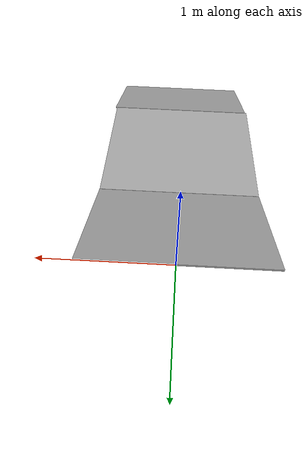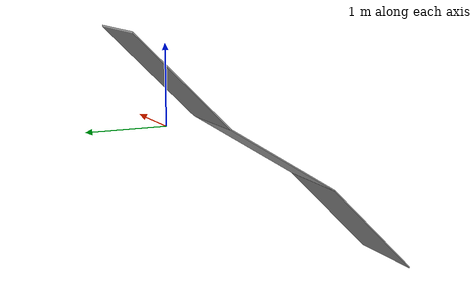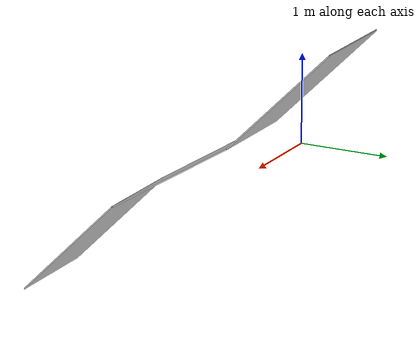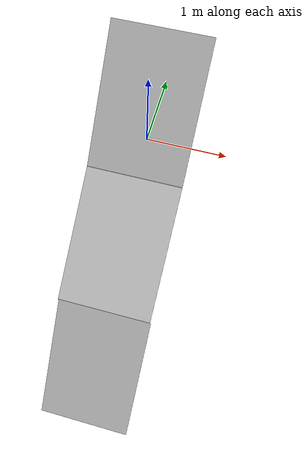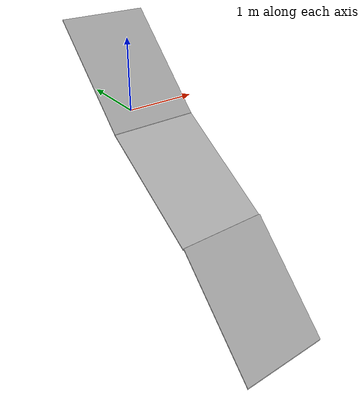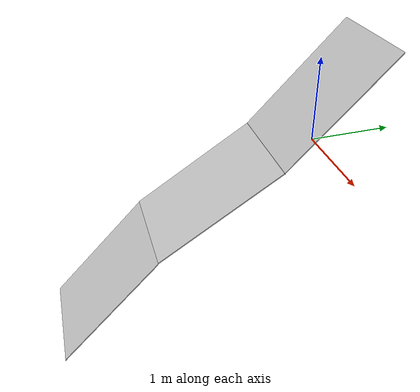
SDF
<?xml version='1.0'?>
<sdf version='1.7'>
  <model name='nist_simple_ramp_120_clone'>
    <link name='nist_simple_ramp_120_link'>
      <pose>0 0 0 0 -0 0</pose>
      <self_collide>0</self_collide>
      <enable_wind>0</enable_wind>
      <kinematic>0</kinematic>
      <visual name='visual'>
        <geometry>
          <mesh>
            <uri>model://nist_simple_ramp_120/meshes/nist_simple_ramp_120.dae</uri>
            <scale>1 1 1</scale>
          </mesh>
        </geometry>
        <material>
          <shader type='pixel'/>
        </material>
        <pose>0 0 0 0 -0 0</pose>
        <transparency>0</transparency>
        <cast_shadows>1</cast_shadows>
      </visual>
      <collision name='collision'>
        <laser_retro>0</laser_retro>
        <max_contacts>10</max_contacts>
        <pose>0 0 0 0 -0 0</pose>
        <geometry>
          <mesh>
            <uri>/home/cp/.gazebo/models/nist_simple_ramp_120/meshes/nist_simple_ramp_120.dae</uri>
            <scale>1 1 1</scale>
          </mesh>
        </geometry>
        <surface>
          <friction>
            <ode>
              <mu>1</mu>
              <mu2>1</mu2>
              <fdir1>0 0 0</fdir1>
              <slip1>0</slip1>
              <slip2>0</slip2>
            </ode>
            <torsional>
              <coefficient>1</coefficient>
              <patch_radius>0</patch_radius>
              <surface_radius>0</surface_radius>
              <use_patch_radius>1</use_patch_radius>
              <ode>
                <slip>0</slip>
              </ode>
            </torsional>
          </friction>
          <bounce>
            <restitution_coefficient>0</restitution_coefficient>
            <threshold>1e+06</threshold>
          </bounce>
          <contact>
            <collide_without_contact>0</collide_without_contact>
            <collide_without_contact_bitmask>1</collide_without_contact_bitmask>
            <collide_bitmask>1</collide_bitmask>
            <ode>
              <soft_cfm>0</soft_cfm>
              <soft_erp>0.2</soft_erp>
              <kp>1e+13</kp>
              <kd>1</kd>
              <max_vel>0.01</max_vel>
              <min_depth>0</min_depth>
            </ode>
            <bullet>
              <split_impulse>1</split_impulse>
              <split_impulse_penetration_threshold>-0.01</split_impulse_penetration_threshold>
              <soft_cfm>0</soft_cfm>
              <soft_erp>0.2</soft_erp>
              <kp>1e+13</kp>
              <kd>1</kd>
            </bullet>
          </contact>
        </surface>
      </collision>
    </link>
    <link name='nist_simple_ramp_120_link_clone'>
      <pose>-0.000385 -1.44094 -1.0206 -0.228258 0 0</pose>
      <self_collide>0</self_collide>
      <enable_wind>0</enable_wind>
      <kinematic>0</kinematic>
      <visual name='visual'>
        <geometry>
          <mesh>
            <uri>model://nist_simple_ramp_120/meshes/nist_simple_ramp_120.dae</uri>
            <scale>1 1 1</scale>
          </mesh>
        </geometry>
        <material>
          <shader type='pixel'/>
        </material>
        <pose>0 0 0 0 -0 0</pose>
        <transparency>0</transparency>
        <cast_shadows>1</cast_shadows>
      </visual>
      <collision name='collision'>
        <laser_retro>0</laser_retro>
        <max_contacts>10</max_contacts>
        <pose>0 0 0 0 -0 0</pose>
        <geometry>
          <mesh>
            <uri>/home/cp/.gazebo/models/nist_simple_ramp_120/meshes/nist_simple_ramp_120.dae</uri>
            <scale>1 1 1</scale>
          </mesh>
        </geometry>
        <surface>
          <friction>
            <ode>
              <mu>1</mu>
              <mu2>1</mu2>
              <fdir1>0 0 0</fdir1>
              <slip1>0</slip1>
              <slip2>0</slip2>
            </ode>
            <torsional>
              <coefficient>1</coefficient>
              <patch_radius>0</patch_radius>
              <surface_radius>0</surface_radius>
              <use_patch_radius>1</use_patch_radius>
              <ode>
                <slip>0</slip>
              </ode>
            </torsional>
          </friction>
          <bounce>
            <restitution_coefficient>0</restitution_coefficient>
            <threshold>1e+06</threshold>
          </bounce>
          <contact>
            <collide_without_contact>0</collide_without_contact>
            <collide_without_contact_bitmask>1</collide_without_contact_bitmask>
            <collide_bitmask>1</collide_bitmask>
            <ode>
              <soft_cfm>0</soft_cfm>
              <soft_erp>0.2</soft_erp>
              <kp>1e+13</kp>
              <kd>1</kd>
              <max_vel>0.01</max_vel>
              <min_depth>0</min_depth>
            </ode>
            <bullet>
              <split_impulse>1</split_impulse>
              <split_impulse_penetration_threshold>-0.01</split_impulse_penetration_threshold>
              <soft_cfm>0</soft_cfm>
              <soft_erp>0.2</soft_erp>
              <kp>1e+13</kp>
              <kd>1</kd>
            </bullet>
          </contact>
        </surface>
      </collision>
    </link>
    <link name='nist_simple_ramp_120_link_clone_0'>
      <pose>0.011456 -2.60372 -2.06883 0.001607 -0 0</pose>
      <self_collide>0</self_collide>
      <enable_wind>0</enable_wind>
      <kinematic>0</kinematic>
      <visual name='visual'>
        <geometry>
          <mesh>
            <uri>model://nist_simple_ramp_120/meshes/nist_simple_ramp_120.dae</uri>
            <scale>1 1 1</scale>
          </mesh>
        </geometry>
        <material>
          <shader type='pixel'/>
        </material>
        <pose>0 0 0 0 -0 0</pose>
        <transparency>0</transparency>
        <cast_shadows>1</cast_shadows>
      </visual>
      <collision name='collision'>
        <laser_retro>0</laser_retro>
        <max_contacts>10</max_contacts>
        <pose>0 0 0 0 -0 0</pose>
        <geometry>
          <mesh>
            <uri>/home/cp/.gazebo/models/nist_simple_ramp_120/meshes/nist_simple_ramp_120.dae</uri>
            <scale>1 1 1</scale>
          </mesh>
        </geometry>
        <surface>
          <friction>
            <ode>
              <mu>1</mu>
              <mu2>1</mu2>
              <fdir1>0 0 0</fdir1>
              <slip1>0</slip1>
              <slip2>0</slip2>
            </ode>
            <torsional>
              <coefficient>1</coefficient>
              <patch_radius>0</patch_radius>
              <surface_radius>0</surface_radius>
              <use_patch_radius>1</use_patch_radius>
              <ode>
                <slip>0</slip>
              </ode>
            </torsional>
          </friction>
          <bounce>
            <restitution_coefficient>0</restitution_coefficient>
            <threshold>1e+06</threshold>
          </bounce>
          <contact>
            <collide_without_contact>0</collide_without_contact>
            <collide_without_contact_bitmask>1</collide_without_contact_bitmask>
            <collide_bitmask>1</collide_bitmask>
            <ode>
              <soft_cfm>0</soft_cfm>
              <soft_erp>0.2</soft_erp>
              <kp>1e+13</kp>
              <kd>1</kd>
              <max_vel>0.01</max_vel>
              <min_depth>0</min_depth>
            </ode>
            <bullet>
              <split_impulse>1</split_impulse>
              <split_impulse_penetration_threshold>-0.01</split_impulse_penetration_threshold>
              <soft_cfm>0</soft_cfm>
              <soft_erp>0.2</soft_erp>
              <kp>1e+13</kp>
              <kd>1</kd>
            </bullet>
          </contact>
        </surface>
      </collision>
    </link>
    <static>1</static>
    <allow_auto_disable>1</allow_auto_disable>
  </model>
</sdf>
